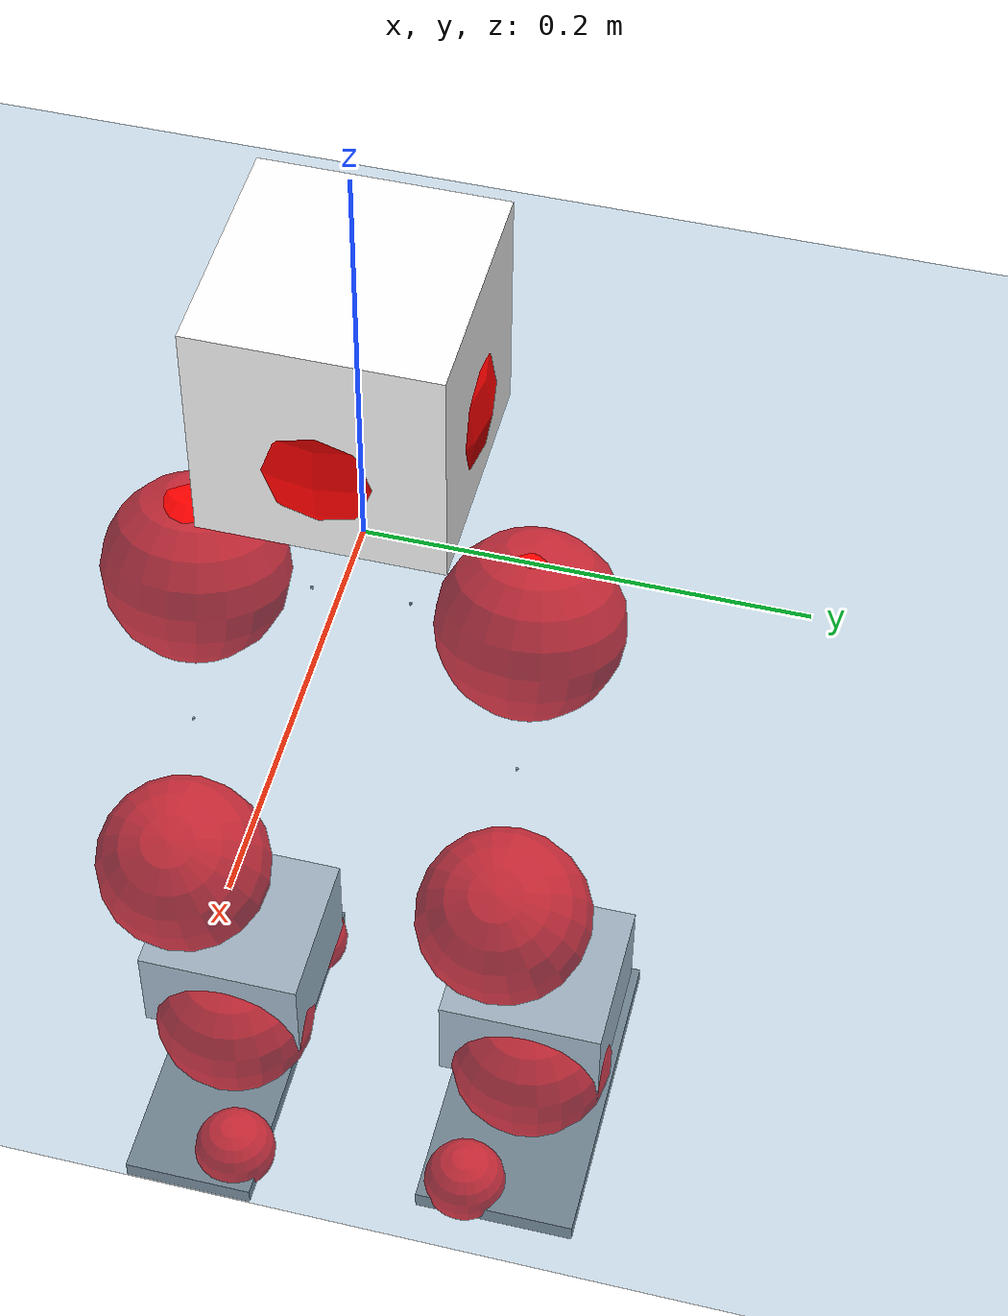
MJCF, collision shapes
<mujoco model="pi_12dof_release_v1">
  <compiler angle="radian" assetdir="assets" balanceinertia="true" inertiafromgeom="false"/>

  <option timestep="0.005" density="1.2" viscosity="2e-05"/>

  <size nkey="1"/>

  <visual>
    <quality shadowsize="8192"/>
    <map shadowclip="0.5"/>
  </visual>

  <default>
    <default class="/">
      <joint armature="0.01" damping="0.01" frictionloss="0.01"/>
      <geom contype="0" conaffinity="0" group="1" solref="-1000 -80"/>
      <site size="0.01 0.005 0.005" group="5"/>
      <general forcelimited="true" biastype="affine" gainprm="20" biasprm="0 -20 -0.5"/>
      <default class="foot">
        <geom size="0.0845 0.036 0.005" type="box" condim="6" group="4" priority="1" friction="0.9 0.2 0.2" solimp="0.015 1 0.005"/>
      </default>
      <default class="reward_collision_sphere">
        <geom group="5" rgba="1 0 0 1"/>
      </default>
    </default>
  </default>

  <asset>
    <texture type="skybox" colorspace="auto" name="//unnamed_texture_0" builtin="gradient" rgb1="0.95 0.95 0.95" rgb2="0.95 0.95 0.95" width="100" height="600"/>
    <texture type="2d" colorspace="auto" name="texplane" builtin="checker" rgb1="0.345 0.575 0.748" rgb2="0.345 0.575 0.748" markrgb="1 1 1" width="512" height="512"/>
    <material name="MatPlane" class="/" texture="texplane" texuniform="true" texrepeat="2 2" specular="0.9"/>
    <mesh name="baselink_1" class="/" file="baselink_1.STL"/>
    <mesh name="r_hip_pitch_link" class="/" file="r_hip_pitch_link.STL"/>
    <mesh name="r_hip_roll_link" class="/" file="r_hip_roll_link.STL"/>
    <mesh name="r_thigh_link" class="/" file="r_thigh_link.STL"/>
    <mesh name="r_calf_link" class="/" file="r_calf_link.STL"/>
    <mesh name="r_ankle_pitch_link" class="/" file="r_ankle_pitch_link.STL"/>
    <mesh name="r_ankle_roll_link" class="/" file="r_ankle_roll_link.STL"/>
    <mesh name="l_hip_pitch_link" class="/" file="l_hip_pitch_link.STL"/>
    <mesh name="l_hip_roll_link" class="/" file="l_hip_roll_link.STL"/>
    <mesh name="l_thigh_link" class="/" file="l_thigh_link.STL"/>
    <mesh name="l_calf_link" class="/" file="l_calf_link.STL"/>
    <mesh name="l_ankle_pitch_link" class="/" file="l_ankle_pitch_link.STL"/>
    <mesh name="l_ankle_roll_link" class="/" file="l_ankle_roll_link.STL"/>
  </asset>

  <worldbody>
    <geom name="floor" class="/" size="100 100 0.125" type="plane" group="0" material="MatPlane"/>
    <light name="toplight_shadow" class="/" pos="0 0 5" dir="0.0990148 0.0990148 -0.990148" type="directional" ambient="0.04 0.04 0.04" diffuse="0.55 0.55 0.55" specular="0.12 0.12 0.12"/>
    <light name="toplight_fill" class="/" pos="0 0 5" dir="0.0990148 0.0990148 -0.990148" type="directional" castshadow="false" ambient="0.04 0.04 0.04" diffuse="0.3 0.3 0.3" specular="0.08 0.08 0.08"/>
    <body name="trunk" pos="-0.000483718 -0.00256607 -0.00103378" quat="1 -4.60096e-05 5.55289e-05 -7.35283e-06">
      <inertial pos="0.00407075 -0.00249103 0.0503683" quat="0.694335 0.00970021 0.00895888 0.719531" mass="2.81814" diaginertia="0.0126513 0.00782033 0.0128294"/>
      <joint name="//unnamed_joint_0" type="free"/>
      <geom name="//unnamed_geom_1" class="/" type="mesh" density="0" rgba="1 1 1 1" mesh="baselink_1"/>
      <geom name="//unnamed_geom_2" class="/" size="0.0548368 0.0548368 0.0548368" pos="0 0 0.100267" type="box" rgba="1 1 1 1"/>
      <geom name="//unnamed_geom_3" class="reward_collision_sphere" size="0.0603204" pos="0 0 0.0877339"/>
      <site name="imu" class="/" pos="0.0132515 0.0139167 -0.0128529" size="0.0109674"/>
      <camera name="track" class="/" pos="0 -1.9538 0" quat="0.707107 0.707107 0 0" mode="trackcom"/>
      <camera name="ego_camera" class="/" pos="0.0794973 0 0.225601" quat="-0.5 -0.5 0.5 0.5"/>
      <body name="r_hip_pitch_link" pos="0.00296366 -0.0220459 -0.0401272" quat="0.99232 0.000246538 -0.123698 -0.000613067">
        <inertial pos="0.00179727 -0.055268 0.00281982" quat="-0.0161088 0.706167 -0.0322404 0.707127" mass="0.473725" diaginertia="0.00014515 8.41657e-05 0.000255228"/>
        <joint name="r_hip_pitch_joint" class="/" pos="0 0 0" axis="-0.0033862 -0.999986 0.00407984" range="-1.73911 1.19378" armature="0.0108879" damping="0.0179052" frictionloss="0.0106139"/>
        <geom name="//unnamed_geom_4" class="/" type="mesh" density="0" rgba="0.75294 0.75294 0.75294 1" mesh="r_hip_pitch_link"/>
        <geom name="//unnamed_geom_5" class="/" size="0.000548368 0.000548368 0.000548368" type="box" rgba="0.75294 0.75294 0.75294 1"/>
        <body name="r_hip_roll_link" pos="-9.59508e-05 -0.0547273 -0.00117297" quat="0.999999 0.000400734 -0.000683295 0.00114227">
          <inertial pos="0.00124667 0.00295074 -0.0763212" quat="0.701681 -0.0876588 -0.0804532 0.702487" mass="0.511799" diaginertia="0.000436956 0.00024404 0.000386837"/>
          <joint name="r_hip_roll_joint" class="/" pos="0 0 0" axis="-0.999898 -0.0106256 0.00953119" range="-0.120936 0.544081" armature="0.00931759" damping="0.023684" frictionloss="0.0115043"/>
          <geom name="//unnamed_geom_6" class="/" type="mesh" density="0" rgba="0.75294 0.75294 0.75294 1" mesh="r_hip_roll_link"/>
          <geom name="//unnamed_geom_7" class="/" size="0.000548368 0.000548368 0.000548368" type="box" rgba="0.75294 0.75294 0.75294 1"/>
          <geom name="//unnamed_geom_8" class="reward_collision_sphere" size="0.0438694"/>
          <body name="r_thigh_link" pos="-0.00173322 -0.00134197 -0.0880653" quat="0.999999 -0.000139626 0.000833958 0.00112227">
            <inertial pos="0.00317463 0.000798689 -0.0603439" quat="0.736664 0.676255 0.00176718 0.00114018" mass="0.151207" diaginertia="0.000162751 8.61231e-05 0.000177781"/>
            <joint name="r_thigh_joint" class="/" pos="0 0 0" axis="-0.00202197 0.00280507 -0.999994" range="-0.357001 0.592962" armature="0.00969387" damping="0.00150243" frictionloss="0.011173"/>
            <geom name="//unnamed_geom_9" class="/" type="mesh" density="0" rgba="0.75294 0.75294 0.75294 1" mesh="r_thigh_link"/>
            <geom name="//unnamed_geom_10" class="/" size="0.000548368 0.000548368 0.000548368" type="box" rgba="0.75294 0.75294 0.75294 1"/>
            <body name="r_calf_link" pos="0.000854538 -0.0041885 -0.0898265" quat="0.947694 0.000227133 0.319181 4.01333e-05">
              <inertial pos="-0.00261134 -0.000384679 -0.0870147" quat="0.999993 0.00126634 0.00104748 0.00350101" mass="1.03282" diaginertia="0.00457383 0.00306122 0.00054925"/>
              <joint name="r_calf_joint" class="/" pos="0 0 0" axis="-0.0114938 -0.999918 0.00564661" range="-1.64334 0.701793" armature="0.010591" damping="0.0107849" frictionloss="0.0123977"/>
              <geom name="//unnamed_geom_11" class="/" type="mesh" density="0" rgba="0.75294 0.75294 0.75294 1" mesh="r_calf_link"/>
              <geom name="//unnamed_geom_12" class="/" size="0.000548368 0.000548368 0.000548368" type="box" rgba="0.75294 0.75294 0.75294 1"/>
              <geom name="//unnamed_geom_13" class="reward_collision_sphere" size="0.0438694"/>
              <body name="r_ankle_pitch_link" pos="0.00197806 0.000717629 -0.172173" quat="0.980061 -0.00018881 -0.198695 -0.00116087">
                <inertial pos="0.00243225 0.00283204 0.000895128" quat="-0.00619332 0.710966 0.00770136 0.703157" mass="0.247" diaginertia="0.000418034 0.000203289 0.000371655"/>
                <joint name="r_ankle_pitch_joint" class="/" pos="0 0 0" axis="0.00436071 -0.999976 -0.00535641" range="-1.24536 0.529849" armature="0.0105437" damping="0.0226826" frictionloss="0.00993995"/>
                <geom name="//unnamed_geom_14" class="/" type="mesh" density="0" rgba="0.75294 0.75294 0.75294 1" mesh="r_ankle_pitch_link"/>
                <geom name="//unnamed_geom_15" class="/" size="0.0427727 0.0438694 0.0274184" type="box" rgba="0.75294 0.75294 0.75294 1"/>
                <body name="r_ankle_roll_link" pos="0.0799398 0.0026007 -0.00231157" quat="0.999999 -0.000680162 0.000707598 0.000331114">
                  <inertial pos="-0.0229435 0.000708024 -0.0154195" quat="0.569818 0.422918 0.427729 0.559907" mass="0.676886" diaginertia="0.00152413 0.000921351 0.000893647"/>
                  <joint name="r_ankle_roll_joint" class="/" pos="0 0 0" axis="-1 0.000426178 0.000160577" stiffness="0.00596227" range="-0.169413 0.158745" armature="0.0108347" damping="0" frictionloss="0.00950853"/>
                  <geom name="//unnamed_geom_16" class="/" type="mesh" density="0" rgba="0.75294 0.75294 0.75294 1" mesh="r_ankle_roll_link"/>
                  <geom name="//unnamed_geom_17" class="/" type="mesh" rgba="0.75294 0.75294 0.75294 1" mesh="r_ankle_roll_link"/>
                  <geom name="right_foot" class="foot" size="0.0945274 0.0345659 0.0049498" pos="-0.0540582 0 -0.055147"/>
                  <geom name="//unnamed_geom_19" class="reward_collision_sphere" size="0.0438694" pos="-0.0529982 0 -0.0250668"/>
                  <geom name="//unnamed_geom_20" class="reward_collision_sphere" size="0.0219347" pos="0.0158995 0.019538 -0.0501336"/>
                  <geom name="//unnamed_geom_21" class="reward_collision_sphere" size="0.0219347" pos="-0.127196 0.019538 -0.0501336"/>
                  <site name="right_foot" class="foot" pos="-0.0540582 0 -0.055147" size="0.0109674"/>
                </body>
              </body>
            </body>
          </body>
        </body>
      </body>
      <body name="l_hip_pitch_link" pos="0.000237597 0.0232817 -0.0414605" quat="0.992266 8.602e-05 -0.124132 0.00061531">
        <inertial pos="0.00145113 0.0506645 0.00243371" quat="-0.0378836 0.70665 0.034996 0.705681" mass="0.536167" diaginertia="0.000176929 9.62159e-05 0.000318111"/>
        <joint name="l_hip_pitch_joint" class="/" pos="0 0 0" axis="0.000971749 0.999999 -0.000967322" stiffness="0.00703887" range="-1.24079 1.74691" armature="0.0113154" damping="0.00132389" frictionloss="0.0125133"/>
        <geom name="//unnamed_geom_22" class="/" type="mesh" density="0" rgba="0.75294 0.75294 0.75294 1" mesh="l_hip_pitch_link"/>
        <geom name="//unnamed_geom_23" class="/" size="0.000548368 0.000548368 0.000548368" type="box" rgba="0.75294 0.75294 0.75294 1"/>
        <body name="l_hip_roll_link" pos="-0.00315183 0.0551614 -0.000614537" quat="1 3.5394e-05 0.000116324 -3.25049e-05">
          <inertial pos="-0.00318968 0.000981243 -0.0775258" quat="0.700314 -0.0889699 -0.0780837 0.703952" mass="0.527722" diaginertia="0.000451716 0.000259912 0.00041217"/>
          <joint name="l_hip_roll_joint" class="/" pos="0 0 0" axis="-0.999932 -0.00471239 -0.0106782" range="-0.528644 0.104887" armature="0.0122519" damping="0.00341693" frictionloss="0.0120166"/>
          <geom name="//unnamed_geom_24" class="/" type="mesh" density="0" rgba="0.75294 0.75294 0.75294 1" mesh="l_hip_roll_link"/>
          <geom name="//unnamed_geom_25" class="/" size="0.000548368 0.000548368 0.000548368" type="box" rgba="0.75294 0.75294 0.75294 1"/>
          <geom name="//unnamed_geom_26" class="reward_collision_sphere" size="0.0438694"/>
          <body name="l_thigh_link" pos="-0.00334879 -0.000736352 -0.0855003" quat="1 0.000145951 -7.86053e-05 0.000134738">
            <inertial pos="0.000689503 -0.00181266 -0.0598977" quat="0.67555 0.737301 -0.00135392 -0.00408163" mass="0.159387" diaginertia="0.000177534 8.81555e-05 0.000184864"/>
            <joint name="l_thigh_joint" class="/" pos="0 0 0" axis="-0.000443647 -0.000559385 -1" range="-0.614403 0.29703" armature="0.00938286" damping="0.0122353" frictionloss="0.011035"/>
            <geom name="//unnamed_geom_27" class="/" type="mesh" density="0" rgba="0.75294 0.75294 0.75294 1" mesh="l_thigh_link"/>
            <geom name="//unnamed_geom_28" class="/" size="0.000548368 0.000548368 0.000548368" type="box" rgba="0.75294 0.75294 0.75294 1"/>
            <body name="l_calf_link" pos="0.0004042 0.000219095 -0.0902415" quat="0.947419 0.000240962 0.319996 0.000715904">
              <inertial pos="0.00154717 0.00558399 -0.0904819" quat="0.999988 0.00435407 0.000711139 0.00198628" mass="1.10062" diaginertia="0.0050365 0.00329931 0.000569586"/>
              <joint name="l_calf_joint" class="/" pos="0 0 0" axis="0.00594504 0.999858 -0.0157814" range="-0.642026 1.61182" armature="0.0116232" damping="0.0121675" frictionloss="0.011911"/>
              <geom name="//unnamed_geom_29" class="/" type="mesh" density="0" rgba="0.75294 0.75294 0.75294 1" mesh="l_calf_link"/>
              <geom name="//unnamed_geom_30" class="/" size="0.000548368 0.000548368 0.000548368" type="box" rgba="0.75294 0.75294 0.75294 1"/>
              <geom name="//unnamed_geom_31" class="reward_collision_sphere" size="0.0438694"/>
              <body name="l_ankle_pitch_link" pos="0.000409081 0.00366902 -0.17445" quat="0.979933 0.000460258 -0.199328 0.000315267">
                <inertial pos="0.00550672 -0.00278986 0.00279817" quat="-0.00135916 0.70725 0.00120841 0.706961" mass="0.221708" diaginertia="0.000391971 0.000189296 0.000357112"/>
                <joint name="l_ankle_pitch_joint" class="/" pos="0 0 0" axis="-7.81441e-05 1 -5.83039e-05" range="-0.554967 1.36122" armature="0.0104395" damping="0.0108836" frictionloss="0.0109266"/>
                <geom name="//unnamed_geom_32" class="/" type="mesh" density="0" rgba="0.75294 0.75294 0.75294 1" mesh="l_ankle_pitch_link"/>
                <geom name="//unnamed_geom_33" class="/" size="0.0427727 0.0438694 0.0274184" type="box" rgba="0.75294 0.75294 0.75294 1"/>
                <body name="l_ankle_roll_link" pos="0.0797392 0.00329061 0.00146111" quat="0.999999 0.000698239 -0.00105811 0.000160166">
                  <inertial pos="-0.0248435 5.37341e-05 -0.0196256" quat="0.557852 0.437351 0.427428 0.561097" mass="0.69508" diaginertia="0.00155134 0.000907277 0.000880252"/>
                  <joint name="l_ankle_roll_joint" class="/" pos="0 0 0" axis="-0.999994 0.00274549 -0.00227456" range="-0.135021 0.099981" armature="0.0117185" damping="0.0175359" frictionloss="0.00978398"/>
                  <geom name="//unnamed_geom_34" class="/" type="mesh" density="0" rgba="0.75294 0.75294 0.75294 1" mesh="l_ankle_roll_link"/>
                  <geom name="//unnamed_geom_35" class="/" type="mesh" rgba="0.75294 0.75294 0.75294 1" mesh="l_ankle_roll_link"/>
                  <geom name="left_foot" class="foot" size="0.085587 0.042838 0.00531095" pos="-0.0540582 0 -0.055147"/>
                  <geom name="//unnamed_geom_37" class="reward_collision_sphere" size="0.0438694" pos="-0.0529982 0 -0.0250668"/>
                  <geom name="//unnamed_geom_38" class="reward_collision_sphere" size="0.0219347" pos="0.0158995 -0.019538 -0.0501336"/>
                  <geom name="//unnamed_geom_39" class="reward_collision_sphere" size="0.0219347" pos="-0.127196 -0.019538 -0.0501336"/>
                  <site name="left_foot" class="foot" pos="-0.0540582 0 -0.055147" size="0.0109674"/>
                </body>
              </body>
            </body>
          </body>
        </body>
      </body>
    </body>
  </worldbody>

  <contact>
    <pair class="/" geom1="floor" geom2="right_foot" name="//unnamed_contact_1"/>
    <pair class="/" geom1="floor" geom2="left_foot" name="//unnamed_contact_0"/>
  </contact>

  <actuator>
    <general name="r_hip_pitch_joint" class="/" joint="r_hip_pitch_joint" forcerange="-22.3499 22.3499" gainprm="20.4355" biasprm="0 -20.4355 -0.541967"/>
    <general name="r_hip_roll_joint" class="/" joint="r_hip_roll_joint" forcerange="-22.9349 22.9349" gainprm="20.4355" biasprm="0 -20.4355 -0.541967"/>
    <general name="r_thigh_joint" class="/" joint="r_thigh_joint" forcerange="-25.5168 25.5168" gainprm="20.4355" biasprm="0 -20.4355 -0.541967"/>
    <general name="r_calf_joint" class="/" joint="r_calf_joint" forcerange="-21.3282 21.3282" gainprm="20.4355" biasprm="0 -20.4355 -0.541967"/>
    <general name="r_ankle_pitch_joint" class="/" joint="r_ankle_pitch_joint" forcerange="-24.2915 24.2915" gainprm="20.4355" biasprm="0 -20.4355 -0.541967"/>
    <general name="r_ankle_roll_joint" class="/" joint="r_ankle_roll_joint" forcerange="-24.2691 24.2691" gainprm="20.4355" biasprm="0 -20.4355 -0.541967"/>
    <general name="l_hip_pitch_joint" class="/" joint="l_hip_pitch_joint" forcerange="-23.3993 23.3993" gainprm="20.4355" biasprm="0 -20.4355 -0.541967"/>
    <general name="l_hip_roll_joint" class="/" joint="l_hip_roll_joint" forcerange="-20.6312 20.6312" gainprm="20.4355" biasprm="0 -20.4355 -0.541967"/>
    <general name="l_thigh_joint" class="/" joint="l_thigh_joint" forcerange="-21.8612 21.8612" gainprm="20.4355" biasprm="0 -20.4355 -0.541967"/>
    <general name="l_calf_joint" class="/" joint="l_calf_joint" forcerange="-24.2508 24.2508" gainprm="20.4355" biasprm="0 -20.4355 -0.541967"/>
    <general name="l_ankle_pitch_joint" class="/" joint="l_ankle_pitch_joint" forcerange="-24.2486 24.2486" gainprm="20.4355" biasprm="0 -20.4355 -0.541967"/>
    <general name="l_ankle_roll_joint" class="/" joint="l_ankle_roll_joint" forcerange="-25.4639 25.4639" gainprm="20.4355" biasprm="0 -20.4355 -0.541967"/>
  </actuator>

  <sensor>
    <gyro site="imu" name="imu_angular_velocity"/>
    <velocimeter site="imu" name="imu_linear_velocity"/>
    <framelinvel objtype="site" objname="left_foot" name="left_foot_global_linear_velocity"/>
    <framelinvel objtype="site" objname="right_foot" name="right_foot_global_linear_velocity"/>
  </sensor>

  <keyframe>
    <key name="home" qpos="0 0 0.291 1 0 0 0 0.4 0 0 -0.8 0.4 0 -0.4 0 0 0.8 -0.4 0"/>
  </keyframe>
</mujoco>
